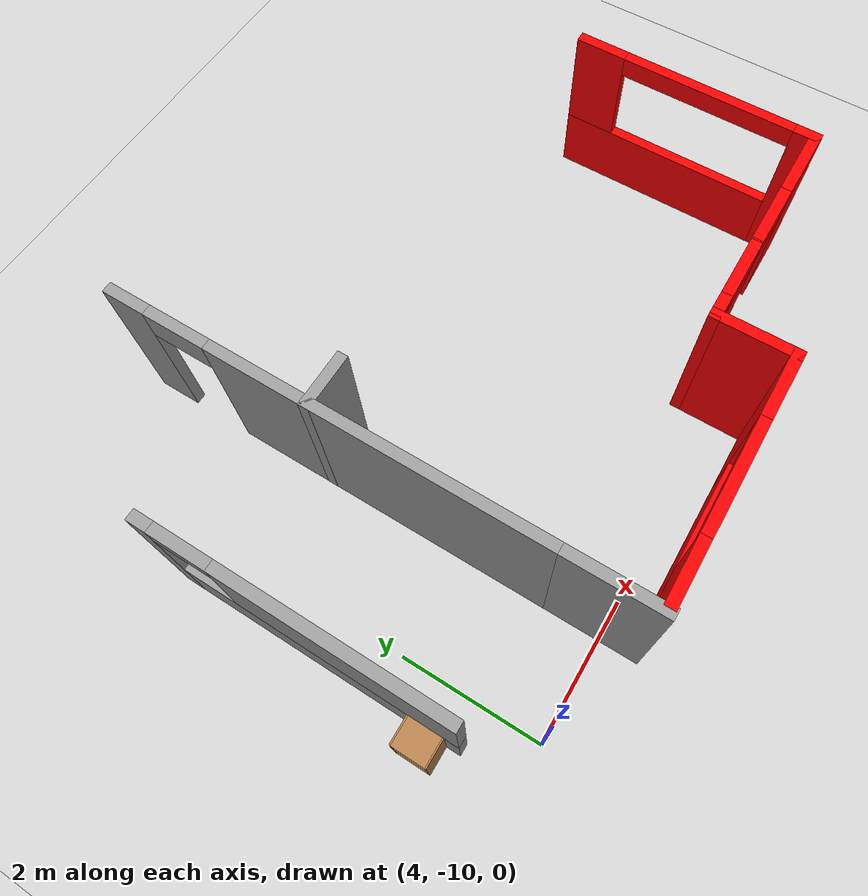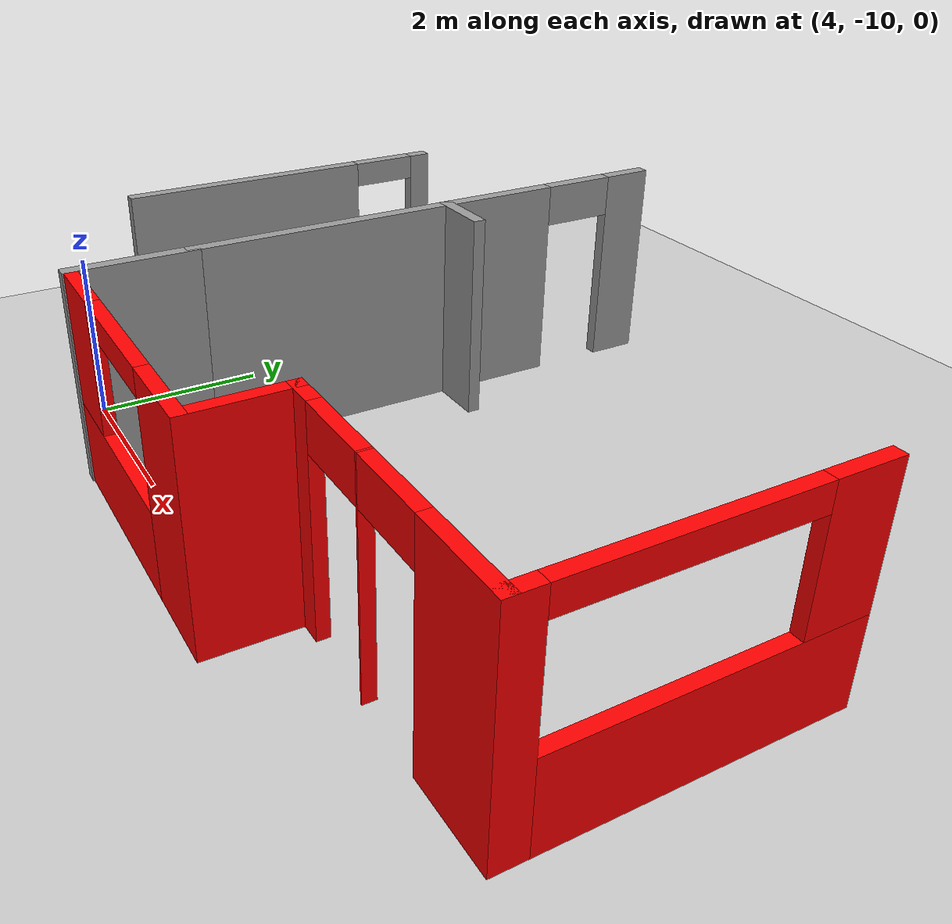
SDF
<sdf version="1.6">
 <world name="default">
  <model name="ground_plane">
   <static>1</static>
   <link name="link">
    <collision name="collision">
     <geometry><plane><normal>0 0 1</normal><size>100 100</size></plane></geometry>
     <surface><friction><ode><mu>100</mu><mu2>50</mu2></ode></friction></surface>
    </collision>
    <visual name="visual">
     <cast_shadows>0</cast_shadows>
     <geometry><plane><normal>0 0 1</normal><size>100 100</size></plane></geometry>
     <material>
      <script><uri>file://media/materials/scripts/gazebo.material</uri><name>Gazebo/Grey</name></script>
     </material>
    </visual>
   </link>
  </model>
  <model name="1floorHouse">
   <link name="Wall_302">
    <pose>-0.789795 -2.54 0 0 0 -1.5708</pose>
    <visual name="Wall_302_Visual_0">
     <pose>-1.93765 0 1.25 0 -0 0</pose>
     <geometry><box><size>0.274706 0.15 2.5</size></box></geometry>
     <material>
      <script><uri>file://media/materials/scripts/gazebo.material</uri><name>Gazebo/Grey</name></script>
      <ambient>1 1 1 1</ambient>
      <diffuse>0.7 0.7 0.7 1</diffuse>
      <specular>0.01 0.01 0.01 1</specular>
      <emissive>0 0 0 1</emissive>
     </material>
    </visual>
    <visual name="Wall_302_Visual_1">
     <pose>0.137353 0 0.5 0 -0 0</pose>
     <geometry><box><size>3.87529 0.15 1</size></box></geometry>
     <material>
      <script><uri>file://media/materials/scripts/gazebo.material</uri><name>Gazebo/Grey</name></script>
      <ambient>1 1 1 1</ambient>
      <diffuse>0.7 0.7 0.7 1</diffuse>
      <specular>0.01 0.01 0.01 1</specular>
      <emissive>0 0 0 1</emissive>
     </material>
    </visual>
    <visual name="Wall_302_Visual_2">
     <pose>0.537353 0 1.75 0 -0 0</pose>
     <geometry><box><size>3.07529 0.15 1.5</size></box></geometry>
     <material>
      <script><uri>file://media/materials/scripts/gazebo.material</uri><name>Gazebo/Grey</name></script>
      <ambient>1 1 1 1</ambient>
      <diffuse>0.7 0.7 0.7 1</diffuse>
      <specular>0.01 0.01 0.01 1</specular>
      <emissive>0 0 0 1</emissive>
     </material>
    </visual>
    <visual name="Wall_302_Visual_3">
     <pose>-1.40029 0 2.35 0 -0 0</pose>
     <geometry><box><size>0.8 0.15 0.3</size></box></geometry>
     <material>
      <script><uri>file://media/materials/scripts/gazebo.material</uri><name>Gazebo/Grey</name></script>
      <ambient>1 1 1 1</ambient>
      <diffuse>0.7 0.7 0.7 1</diffuse>
      <specular>0.01 0.01 0.01 1</specular>
      <emissive>0 0 0 1</emissive>
     </material>
    </visual>
    <collision name="Wall_302_Collision_0">
     <pose>-1.93765 0 1.25 0 -0 0</pose>
     <geometry><box><size>0.274706 0.15 2.5</size></box></geometry>
     <surface>
      <friction>
       <ode><mu>1</mu><mu2>1</mu2><fdir1>0 0 0</fdir1><slip1>0</slip1><slip2>0</slip2></ode>
       <torsional>
        <coefficient>1</coefficient>
        <patch_radius>0</patch_radius>
        <surface_radius>0</surface_radius>
        <use_patch_radius>1</use_patch_radius>
        <ode><slip>0</slip></ode>
       </torsional>
      </friction>
      <bounce><restitution_coefficient>0</restitution_coefficient><threshold>1e+06</threshold></bounce>
      <contact>
       <collide_without_contact>0</collide_without_contact>
       <collide_without_contact_bitmask>1</collide_without_contact_bitmask>
       <collide_bitmask>1</collide_bitmask>
       <ode>
        <soft_cfm>0</soft_cfm>
        <soft_erp>0.2</soft_erp>
        <kp>1e+13</kp>
        <kd>1</kd>
        <max_vel>0.01</max_vel>
        <min_depth>0</min_depth>
       </ode>
       <bullet>
        <split_impulse>1</split_impulse>
        <split_impulse_penetration_threshold>-0.01</split_impulse_penetration_threshold>
        <soft_cfm>0</soft_cfm>
        <soft_erp>0.2</soft_erp>
        <kp>1e+13</kp>
        <kd>1</kd>
       </bullet>
      </contact>
     </surface>
    </collision>
    <collision name="Wall_302_Collision_3">
     <pose>-1.40029 0 2.35 0 -0 0</pose>
     <geometry><box><size>0.8 0.15 0.3</size></box></geometry>
     <surface>
      <friction>
       <ode><mu>1</mu><mu2>1</mu2><fdir1>0 0 0</fdir1><slip1>0</slip1><slip2>0</slip2></ode>
       <torsional>
        <coefficient>1</coefficient>
        <patch_radius>0</patch_radius>
        <surface_radius>0</surface_radius>
        <use_patch_radius>1</use_patch_radius>
        <ode><slip>0</slip></ode>
       </torsional>
      </friction>
      <bounce><restitution_coefficient>0</restitution_coefficient><threshold>1e+06</threshold></bounce>
      <contact>
       <collide_without_contact>0</collide_without_contact>
       <collide_without_contact_bitmask>1</collide_without_contact_bitmask>
       <collide_bitmask>1</collide_bitmask>
       <ode>
        <soft_cfm>0</soft_cfm>
        <soft_erp>0.2</soft_erp>
        <kp>1e+13</kp>
        <kd>1</kd>
        <max_vel>0.01</max_vel>
        <min_depth>0</min_depth>
       </ode>
       <bullet>
        <split_impulse>1</split_impulse>
        <split_impulse_penetration_threshold>-0.01</split_impulse_penetration_threshold>
        <soft_cfm>0</soft_cfm>
        <soft_erp>0.2</soft_erp>
        <kp>1e+13</kp>
        <kd>1</kd>
       </bullet>
      </contact>
     </surface>
    </collision>
    <collision name="Wall_302_Collision_1">
     <pose>0.137353 0 0.5 0 -0 0</pose>
     <geometry><box><size>3.87529 0.15 1</size></box></geometry>
     <surface>
      <friction>
       <ode><mu>1</mu><mu2>1</mu2><fdir1>0 0 0</fdir1><slip1>0</slip1><slip2>0</slip2></ode>
       <torsional>
        <coefficient>1</coefficient>
        <patch_radius>0</patch_radius>
        <surface_radius>0</surface_radius>
        <use_patch_radius>1</use_patch_radius>
        <ode><slip>0</slip></ode>
       </torsional>
      </friction>
      <bounce><restitution_coefficient>0</restitution_coefficient><threshold>1e+06</threshold></bounce>
      <contact>
       <collide_without_contact>0</collide_without_contact>
       <collide_without_contact_bitmask>1</collide_without_contact_bitmask>
       <collide_bitmask>1</collide_bitmask>
       <ode>
        <soft_cfm>0</soft_cfm>
        <soft_erp>0.2</soft_erp>
        <kp>1e+13</kp>
        <kd>1</kd>
        <max_vel>0.01</max_vel>
        <min_depth>0</min_depth>
       </ode>
       <bullet>
        <split_impulse>1</split_impulse>
        <split_impulse_penetration_threshold>-0.01</split_impulse_penetration_threshold>
        <soft_cfm>0</soft_cfm>
        <soft_erp>0.2</soft_erp>
        <kp>1e+13</kp>
        <kd>1</kd>
       </bullet>
      </contact>
     </surface>
    </collision>
    <collision name="Wall_302_Collision_2">
     <pose>0.537353 0 1.75 0 -0 0</pose>
     <geometry><box><size>3.07529 0.15 1.5</size></box></geometry>
     <surface>
      <friction>
       <ode><mu>1</mu><mu2>1</mu2><fdir1>0 0 0</fdir1><slip1>0</slip1><slip2>0</slip2></ode>
       <torsional>
        <coefficient>1</coefficient>
        <patch_radius>0</patch_radius>
        <surface_radius>0</surface_radius>
        <use_patch_radius>1</use_patch_radius>
        <ode><slip>0</slip></ode>
       </torsional>
      </friction>
      <bounce><restitution_coefficient>0</restitution_coefficient><threshold>1e+06</threshold></bounce>
      <contact>
       <collide_without_contact>0</collide_without_contact>
       <collide_without_contact_bitmask>1</collide_without_contact_bitmask>
       <collide_bitmask>1</collide_bitmask>
       <ode>
        <soft_cfm>0</soft_cfm>
        <soft_erp>0.2</soft_erp>
        <kp>1e+13</kp>
        <kd>1</kd>
        <max_vel>0.01</max_vel>
        <min_depth>0</min_depth>
       </ode>
       <bullet>
        <split_impulse>1</split_impulse>
        <split_impulse_penetration_threshold>-0.01</split_impulse_penetration_threshold>
        <soft_cfm>0</soft_cfm>
        <soft_erp>0.2</soft_erp>
        <kp>1e+13</kp>
        <kd>1</kd>
       </bullet>
      </contact>
     </surface>
    </collision>
   </link>
   <link name="Wall_336">
    <pose>1.26021 -1.46995 0 0 0 -1.5708</pose>
    <visual name="Wall_336_Visual_0">
     <pose>-2.8165 0 1.25 0 -0 0</pose>
     <geometry><box><size>0.617113 0.15 2.5</size></box></geometry>
     <material>
      <script><uri>file://media/materials/scripts/gazebo.material</uri><name>Gazebo/Grey</name></script>
      <ambient>1 1 1 1</ambient>
      <diffuse>0.7 0.7 0.7 1</diffuse>
      <specular>0.01 0.01 0.01 1</specular>
      <emissive>0 0 0 1</emissive>
     </material>
    </visual>
    <visual name="Wall_336_Visual_1">
     <pose>0.758557 0 1.25 0 -0 0</pose>
     <geometry><box><size>4.733 0.15 2.5</size></box></geometry>
     <material>
      <script><uri>file://media/materials/scripts/gazebo.material</uri><name>Gazebo/Grey</name></script>
      <ambient>1 1 1 1</ambient>
      <diffuse>0.7 0.7 0.7 1</diffuse>
      <specular>0.01 0.01 0.01 1</specular>
      <emissive>0 0 0 1</emissive>
     </material>
    </visual>
    <visual name="Wall_336_Visual_2">
     <pose>-2.05794 0 2.25 0 -0 0</pose>
     <geometry><box><size>0.9 0.15 0.5</size></box></geometry>
     <material>
      <script><uri>file://media/materials/scripts/gazebo.material</uri><name>Gazebo/Grey</name></script>
      <ambient>1 1 1 1</ambient>
      <diffuse>0.7 0.7 0.7 1</diffuse>
      <specular>0.01 0.01 0.01 1</specular>
      <emissive>0 0 0 1</emissive>
     </material>
    </visual>
    <collision name="Wall_336_Collision_0">
     <pose>-2.8165 0 1.25 0 -0 0</pose>
     <geometry><box><size>0.617113 0.15 2.5</size></box></geometry>
     <surface>
      <friction>
       <ode><mu>1</mu><mu2>1</mu2><fdir1>0 0 0</fdir1><slip1>0</slip1><slip2>0</slip2></ode>
       <torsional>
        <coefficient>1</coefficient>
        <patch_radius>0</patch_radius>
        <surface_radius>0</surface_radius>
        <use_patch_radius>1</use_patch_radius>
        <ode><slip>0</slip></ode>
       </torsional>
      </friction>
      <bounce><restitution_coefficient>0</restitution_coefficient><threshold>1e+06</threshold></bounce>
      <contact>
       <collide_without_contact>0</collide_without_contact>
       <collide_without_contact_bitmask>1</collide_without_contact_bitmask>
       <collide_bitmask>1</collide_bitmask>
       <ode>
        <soft_cfm>0</soft_cfm>
        <soft_erp>0.2</soft_erp>
        <kp>1e+13</kp>
        <kd>1</kd>
        <max_vel>0.01</max_vel>
        <min_depth>0</min_depth>
       </ode>
       <bullet>
        <split_impulse>1</split_impulse>
        <split_impulse_penetration_threshold>-0.01</split_impulse_penetration_threshold>
        <soft_cfm>0</soft_cfm>
        <soft_erp>0.2</soft_erp>
        <kp>1e+13</kp>
        <kd>1</kd>
       </bullet>
      </contact>
     </surface>
    </collision>
    <collision name="Wall_336_Collision_1">
     <pose>0.758557 0 1.25 0 -0 0</pose>
     <geometry><box><size>4.733 0.15 2.5</size></box></geometry>
     <surface>
      <friction>
       <ode><mu>1</mu><mu2>1</mu2><fdir1>0 0 0</fdir1><slip1>0</slip1><slip2>0</slip2></ode>
       <torsional>
        <coefficient>1</coefficient>
        <patch_radius>0</patch_radius>
        <surface_radius>0</surface_radius>
        <use_patch_radius>1</use_patch_radius>
        <ode><slip>0</slip></ode>
       </torsional>
      </friction>
      <bounce><restitution_coefficient>0</restitution_coefficient><threshold>1e+06</threshold></bounce>
      <contact>
       <collide_without_contact>0</collide_without_contact>
       <collide_without_contact_bitmask>1</collide_without_contact_bitmask>
       <collide_bitmask>1</collide_bitmask>
       <ode>
        <soft_cfm>0</soft_cfm>
        <soft_erp>0.2</soft_erp>
        <kp>1e+13</kp>
        <kd>1</kd>
        <max_vel>0.01</max_vel>
        <min_depth>0</min_depth>
       </ode>
       <bullet>
        <split_impulse>1</split_impulse>
        <split_impulse_penetration_threshold>-0.01</split_impulse_penetration_threshold>
        <soft_cfm>0</soft_cfm>
        <soft_erp>0.2</soft_erp>
        <kp>1e+13</kp>
        <kd>1</kd>
       </bullet>
      </contact>
     </surface>
    </collision>
    <collision name="Wall_336_Collision_2">
     <pose>-2.05794 0 2.25 0 -0 0</pose>
     <geometry><box><size>0.9 0.15 0.5</size></box></geometry>
     <surface>
      <friction>
       <ode><mu>1</mu><mu2>1</mu2><fdir1>0 0 0</fdir1><slip1>0</slip1><slip2>0</slip2></ode>
       <torsional>
        <coefficient>1</coefficient>
        <patch_radius>0</patch_radius>
        <surface_radius>0</surface_radius>
        <use_patch_radius>1</use_patch_radius>
        <ode><slip>0</slip></ode>
       </torsional>
      </friction>
      <bounce><restitution_coefficient>0</restitution_coefficient><threshold>1e+06</threshold></bounce>
      <contact>
       <collide_without_contact>0</collide_without_contact>
       <collide_without_contact_bitmask>1</collide_without_contact_bitmask>
       <collide_bitmask>1</collide_bitmask>
       <ode>
        <soft_cfm>0</soft_cfm>
        <soft_erp>0.2</soft_erp>
        <kp>1e+13</kp>
        <kd>1</kd>
        <max_vel>0.01</max_vel>
        <min_depth>0</min_depth>
       </ode>
       <bullet>
        <split_impulse>1</split_impulse>
        <split_impulse_penetration_threshold>-0.01</split_impulse_penetration_threshold>
        <soft_cfm>0</soft_cfm>
        <soft_erp>0.2</soft_erp>
        <kp>1e+13</kp>
        <kd>1</kd>
       </bullet>
      </contact>
     </surface>
    </collision>
   </link>
   <link name="Wall_337">
    <pose>1.5832 -1.312 0 0 -0 0</pose>
    <visual name="Wall_337_Visual">
     <pose>0 0 1.25 0 -0 0</pose>
     <geometry><box><size>0.8 0.15 2.5</size></box></geometry>
     <material>
      <script><uri>file://media/materials/scripts/gazebo.material</uri><name>Gazebo/Grey</name></script>
      <ambient>1 1 1 1</ambient>
      <diffuse>0.7 0.7 0.7 1</diffuse>
      <specular>0.01 0.01 0.01 1</specular>
      <emissive>0 0 0 1</emissive>
     </material>
    </visual>
    <collision name="Wall_337_Collision">
     <pose>0 0 1.25 0 -0 0</pose>
     <geometry><box><size>0.8 0.15 2.5</size></box></geometry>
     <surface>
      <friction>
       <ode><mu>1</mu><mu2>1</mu2><fdir1>0 0 0</fdir1><slip1>0</slip1><slip2>0</slip2></ode>
       <torsional>
        <coefficient>1</coefficient>
        <patch_radius>0</patch_radius>
        <surface_radius>0</surface_radius>
        <use_patch_radius>1</use_patch_radius>
        <ode><slip>0</slip></ode>
       </torsional>
      </friction>
      <bounce><restitution_coefficient>0</restitution_coefficient><threshold>1e+06</threshold></bounce>
      <contact>
       <collide_without_contact>0</collide_without_contact>
       <collide_without_contact_bitmask>1</collide_without_contact_bitmask>
       <collide_bitmask>1</collide_bitmask>
       <ode>
        <soft_cfm>0</soft_cfm>
        <soft_erp>0.2</soft_erp>
        <kp>1e+13</kp>
        <kd>1</kd>
        <max_vel>0.01</max_vel>
        <min_depth>0</min_depth>
       </ode>
       <bullet>
        <split_impulse>1</split_impulse>
        <split_impulse_penetration_threshold>-0.01</split_impulse_penetration_threshold>
        <soft_cfm>0</soft_cfm>
        <soft_erp>0.2</soft_erp>
        <kp>1e+13</kp>
        <kd>1</kd>
       </bullet>
      </contact>
     </surface>
    </collision>
   </link>
   <link name="Wall_338">
    <pose>7.8602 -3.07643 0 0 -0 1.5708</pose>
    <visual name="Wall_338_Visual_0">
     <pose>-1.61551 0 1.25 0 -0 0</pose>
     <geometry><box><size>0.368981 0.15 2.5</size></box></geometry>
     <material>
      <script><uri>file://media/materials/scripts/gazebo.material</uri><name>Gazebo/Grey</name></script>
      <ambient>1 0 0 1</ambient>
      <diffuse>0.7 0.7 0.7 1</diffuse>
      <specular>0.01 0.01 0.01 1</specular>
      <emissive>0 0 0 1</emissive>
     </material>
    </visual>
    <visual name="Wall_338_Visual_1">
     <pose>0.18449 0 0.5 0 -0 0</pose>
     <geometry><box><size>3.23102 0.15 1</size></box></geometry>
     <material>
      <script><uri>file://media/materials/scripts/gazebo.material</uri><name>Gazebo/Grey</name></script>
      <ambient>1 0 0 1</ambient>
      <diffuse>0.7 0.7 0.7 1</diffuse>
      <specular>0.01 0.01 0.01 1</specular>
      <emissive>0 0 0 1</emissive>
     </material>
    </visual>
    <visual name="Wall_338_Visual_2">
     <pose>1.43449 0 1.75 0 -0 0</pose>
     <geometry><box><size>0.731019 0.15 1.5</size></box></geometry>
     <material>
      <script><uri>file://media/materials/scripts/gazebo.material</uri><name>Gazebo/Grey</name></script>
      <ambient>1 0 0 1</ambient>
      <diffuse>0.7 0.7 0.7 1</diffuse>
      <specular>0.01 0.01 0.01 1</specular>
      <emissive>0 0 0 1</emissive>
     </material>
    </visual>
    <visual name="Wall_338_Visual_3">
     <pose>-0.181019 0 2.35 0 -0 0</pose>
     <geometry><box><size>2.5 0.15 0.3</size></box></geometry>
     <material>
      <script><uri>file://media/materials/scripts/gazebo.material</uri><name>Gazebo/Grey</name></script>
      <ambient>1 0 0 1</ambient>
      <diffuse>0.7 0.7 0.7 1</diffuse>
      <specular>0.01 0.01 0.01 1</specular>
      <emissive>0 0 0 1</emissive>
     </material>
    </visual>
    <collision name="Wall_338_Collision_0">
     <pose>-1.61551 0 1.25 0 -0 0</pose>
     <geometry><box><size>0.368981 0.15 2.5</size></box></geometry>
     <surface>
      <friction>
       <ode><mu>1</mu><mu2>1</mu2><fdir1>0 0 0</fdir1><slip1>0</slip1><slip2>0</slip2></ode>
       <torsional>
        <coefficient>1</coefficient>
        <patch_radius>0</patch_radius>
        <surface_radius>0</surface_radius>
        <use_patch_radius>1</use_patch_radius>
        <ode><slip>0</slip></ode>
       </torsional>
      </friction>
      <bounce><restitution_coefficient>0</restitution_coefficient><threshold>1e+06</threshold></bounce>
      <contact>
       <collide_without_contact>0</collide_without_contact>
       <collide_without_contact_bitmask>1</collide_without_contact_bitmask>
       <collide_bitmask>1</collide_bitmask>
       <ode>
        <soft_cfm>0</soft_cfm>
        <soft_erp>0.2</soft_erp>
        <kp>1e+13</kp>
        <kd>1</kd>
        <max_vel>0.01</max_vel>
        <min_depth>0</min_depth>
       </ode>
       <bullet>
        <split_impulse>1</split_impulse>
        <split_impulse_penetration_threshold>-0.01</split_impulse_penetration_threshold>
        <soft_cfm>0</soft_cfm>
        <soft_erp>0.2</soft_erp>
        <kp>1e+13</kp>
        <kd>1</kd>
       </bullet>
      </contact>
     </surface>
    </collision>
    <collision name="Wall_338_Collision_1">
     <pose>0.18449 0 0.5 0 -0 0</pose>
     <geometry><box><size>3.23102 0.15 1</size></box></geometry>
     <surface>
      <friction>
       <ode><mu>1</mu><mu2>1</mu2><fdir1>0 0 0</fdir1><slip1>0</slip1><slip2>0</slip2></ode>
       <torsional>
        <coefficient>1</coefficient>
        <patch_radius>0</patch_radius>
        <surface_radius>0</surface_radius>
        <use_patch_radius>1</use_patch_radius>
        <ode><slip>0</slip></ode>
       </torsional>
      </friction>
      <bounce><restitution_coefficient>0</restitution_coefficient><threshold>1e+06</threshold></bounce>
      <contact>
       <collide_without_contact>0</collide_without_contact>
       <collide_without_contact_bitmask>1</collide_without_contact_bitmask>
       <collide_bitmask>1</collide_bitmask>
       <ode>
        <soft_cfm>0</soft_cfm>
        <soft_erp>0.2</soft_erp>
        <kp>1e+13</kp>
        <kd>1</kd>
        <max_vel>0.01</max_vel>
        <min_depth>0</min_depth>
       </ode>
       <bullet>
        <split_impulse>1</split_impulse>
        <split_impulse_penetration_threshold>-0.01</split_impulse_penetration_threshold>
        <soft_cfm>0</soft_cfm>
        <soft_erp>0.2</soft_erp>
        <kp>1e+13</kp>
        <kd>1</kd>
       </bullet>
      </contact>
     </surface>
    </collision>
    <collision name="Wall_338_Collision_2">
     <pose>1.43449 0 1.75 0 -0 0</pose>
     <geometry><box><size>0.731019 0.15 1.5</size></box></geometry>
     <surface>
      <friction>
       <ode><mu>1</mu><mu2>1</mu2><fdir1>0 0 0</fdir1><slip1>0</slip1><slip2>0</slip2></ode>
       <torsional>
        <coefficient>1</coefficient>
        <patch_radius>0</patch_radius>
        <surface_radius>0</surface_radius>
        <use_patch_radius>1</use_patch_radius>
        <ode><slip>0</slip></ode>
       </torsional>
      </friction>
      <bounce><restitution_coefficient>0</restitution_coefficient><threshold>1e+06</threshold></bounce>
      <contact>
       <collide_without_contact>0</collide_without_contact>
       <collide_without_contact_bitmask>1</collide_without_contact_bitmask>
       <collide_bitmask>1</collide_bitmask>
       <ode>
        <soft_cfm>0</soft_cfm>
        <soft_erp>0.2</soft_erp>
        <kp>1e+13</kp>
        <kd>1</kd>
        <max_vel>0.01</max_vel>
        <min_depth>0</min_depth>
       </ode>
       <bullet>
        <split_impulse>1</split_impulse>
        <split_impulse_penetration_threshold>-0.01</split_impulse_penetration_threshold>
        <soft_cfm>0</soft_cfm>
        <soft_erp>0.2</soft_erp>
        <kp>1e+13</kp>
        <kd>1</kd>
       </bullet>
      </contact>
     </surface>
    </collision>
    <collision name="Wall_338_Collision_3">
     <pose>-0.181019 0 2.35 0 -0 0</pose>
     <geometry><box><size>2.5 0.15 0.3</size></box></geometry>
     <surface>
      <friction>
       <ode><mu>1</mu><mu2>1</mu2><fdir1>0 0 0</fdir1><slip1>0</slip1><slip2>0</slip2></ode>
       <torsional>
        <coefficient>1</coefficient>
        <patch_radius>0</patch_radius>
        <surface_radius>0</surface_radius>
        <use_patch_radius>1</use_patch_radius>
        <ode><slip>0</slip></ode>
       </torsional>
      </friction>
      <bounce><restitution_coefficient>0</restitution_coefficient><threshold>1e+06</threshold></bounce>
      <contact>
       <collide_without_contact>0</collide_without_contact>
       <collide_without_contact_bitmask>1</collide_without_contact_bitmask>
       <collide_bitmask>1</collide_bitmask>
       <ode>
        <soft_cfm>0</soft_cfm>
        <soft_erp>0.2</soft_erp>
        <kp>1e+13</kp>
        <kd>1</kd>
        <max_vel>0.01</max_vel>
        <min_depth>0</min_depth>
       </ode>
       <bullet>
        <split_impulse>1</split_impulse>
        <split_impulse_penetration_threshold>-0.01</split_impulse_penetration_threshold>
        <soft_cfm>0</soft_cfm>
        <soft_erp>0.2</soft_erp>
        <kp>1e+13</kp>
        <kd>1</kd>
       </bullet>
      </contact>
     </surface>
    </collision>
   </link>
   <link name="Wall_339">
    <pose>6.2852 -4.80143 0 0 -0 3.14159</pose>
    <visual name="Wall_339_Visual_0">
     <pose>-1.11026 0 1.25 0 -0 0</pose>
     <geometry><box><size>1.07948 0.15 2.5</size></box></geometry>
     <material>
      <script><uri>file://media/materials/scripts/gazebo.material</uri><name>Gazebo/Grey</name></script>
      <ambient>1 0 0 1</ambient>
      <diffuse>0.7 0.7 0.7 1</diffuse>
      <specular>0.01 0.01 0.01 1</specular>
      <emissive>0 0 0 1</emissive>
     </material>
    </visual>
    <visual name="Wall_339_Visual_1">
     <pose>0.341197 0 1.25 0 -0 0</pose>
     <geometry><box><size>0.023442 0.15 2.5</size></box></geometry>
     <material>
      <script><uri>file://media/materials/scripts/gazebo.material</uri><name>Gazebo/Grey</name></script>
      <ambient>1 0 0 1</ambient>
      <diffuse>0.7 0.7 0.7 1</diffuse>
      <specular>0.01 0.01 0.01 1</specular>
      <emissive>0 0 0 1</emissive>
     </material>
    </visual>
    <visual name="Wall_339_Visual_3">
     <pose>-0.120524 0 2.25 0 -0 0</pose>
     <geometry><box><size>0.9 0.15 0.5</size></box></geometry>
     <material>
      <script><uri>file://media/materials/scripts/gazebo.material</uri><name>Gazebo/Grey</name></script>
      <ambient>1 0 0 1</ambient>
      <diffuse>0.7 0.7 0.7 1</diffuse>
      <specular>0.01 0.01 0.01 1</specular>
      <emissive>0 0 0 1</emissive>
     </material>
    </visual>
    <visual name="Wall_339_Visual_2">
     <pose>1.45146 0 1.25 0 -0 0</pose>
     <geometry><box><size>0.397083 0.15 2.5</size></box></geometry>
     <material>
      <script><uri>file://media/materials/scripts/gazebo.material</uri><name>Gazebo/Grey</name></script>
      <ambient>1 0 0 1</ambient>
      <diffuse>0.7 0.7 0.7 1</diffuse>
      <specular>0.01 0.01 0.01 1</specular>
      <emissive>0 0 0 1</emissive>
     </material>
    </visual>
    <visual name="Wall_339_Visual_4">
     <pose>0.802917 0 2.25 0 -0 0</pose>
     <geometry><box><size>0.9 0.15 0.5</size></box></geometry>
     <material>
      <script><uri>file://media/materials/scripts/gazebo.material</uri><name>Gazebo/Grey</name></script>
      <ambient>1 0 0 1</ambient>
      <diffuse>0.7 0.7 0.7 1</diffuse>
      <specular>0.01 0.01 0.01 1</specular>
      <emissive>0 0 0 1</emissive>
     </material>
    </visual>
    <collision name="Wall_339_Collision_0">
     <pose>-1.11026 0 1.25 0 -0 0</pose>
     <geometry><box><size>1.07948 0.15 2.5</size></box></geometry>
     <surface>
      <friction>
       <ode><mu>1</mu><mu2>1</mu2><fdir1>0 0 0</fdir1><slip1>0</slip1><slip2>0</slip2></ode>
       <torsional>
        <coefficient>1</coefficient>
        <patch_radius>0</patch_radius>
        <surface_radius>0</surface_radius>
        <use_patch_radius>1</use_patch_radius>
        <ode><slip>0</slip></ode>
       </torsional>
      </friction>
      <bounce><restitution_coefficient>0</restitution_coefficient><threshold>1e+06</threshold></bounce>
      <contact>
       <collide_without_contact>0</collide_without_contact>
       <collide_without_contact_bitmask>1</collide_without_contact_bitmask>
       <collide_bitmask>1</collide_bitmask>
       <ode>
        <soft_cfm>0</soft_cfm>
        <soft_erp>0.2</soft_erp>
        <kp>1e+13</kp>
        <kd>1</kd>
        <max_vel>0.01</max_vel>
        <min_depth>0</min_depth>
       </ode>
       <bullet>
        <split_impulse>1</split_impulse>
        <split_impulse_penetration_threshold>-0.01</split_impulse_penetration_threshold>
        <soft_cfm>0</soft_cfm>
        <soft_erp>0.2</soft_erp>
        <kp>1e+13</kp>
        <kd>1</kd>
       </bullet>
      </contact>
     </surface>
    </collision>
    <collision name="Wall_339_Collision_4">
     <pose>0.802917 0 2.25 0 -0 0</pose>
     <geometry><box><size>0.9 0.15 0.5</size></box></geometry>
     <surface>
      <friction>
       <ode><mu>1</mu><mu2>1</mu2><fdir1>0 0 0</fdir1><slip1>0</slip1><slip2>0</slip2></ode>
       <torsional>
        <coefficient>1</coefficient>
        <patch_radius>0</patch_radius>
        <surface_radius>0</surface_radius>
        <use_patch_radius>1</use_patch_radius>
        <ode><slip>0</slip></ode>
       </torsional>
      </friction>
      <bounce><restitution_coefficient>0</restitution_coefficient><threshold>1e+06</threshold></bounce>
      <contact>
       <collide_without_contact>0</collide_without_contact>
       <collide_without_contact_bitmask>1</collide_without_contact_bitmask>
       <collide_bitmask>1</collide_bitmask>
       <ode>
        <soft_cfm>0</soft_cfm>
        <soft_erp>0.2</soft_erp>
        <kp>1e+13</kp>
        <kd>1</kd>
        <max_vel>0.01</max_vel>
        <min_depth>0</min_depth>
       </ode>
       <bullet>
        <split_impulse>1</split_impulse>
        <split_impulse_penetration_threshold>-0.01</split_impulse_penetration_threshold>
        <soft_cfm>0</soft_cfm>
        <soft_erp>0.2</soft_erp>
        <kp>1e+13</kp>
        <kd>1</kd>
       </bullet>
      </contact>
     </surface>
    </collision>
    <collision name="Wall_339_Collision_1">
     <pose>0.341197 0 1.25 0 -0 0</pose>
     <geometry><box><size>0.023442 0.15 2.5</size></box></geometry>
     <surface>
      <friction>
       <ode><mu>1</mu><mu2>1</mu2><fdir1>0 0 0</fdir1><slip1>0</slip1><slip2>0</slip2></ode>
       <torsional>
        <coefficient>1</coefficient>
        <patch_radius>0</patch_radius>
        <surface_radius>0</surface_radius>
        <use_patch_radius>1</use_patch_radius>
        <ode><slip>0</slip></ode>
       </torsional>
      </friction>
      <bounce><restitution_coefficient>0</restitution_coefficient><threshold>1e+06</threshold></bounce>
      <contact>
       <collide_without_contact>0</collide_without_contact>
       <collide_without_contact_bitmask>1</collide_without_contact_bitmask>
       <collide_bitmask>1</collide_bitmask>
       <ode>
        <soft_cfm>0</soft_cfm>
        <soft_erp>0.2</soft_erp>
        <kp>1e+13</kp>
        <kd>1</kd>
        <max_vel>0.01</max_vel>
        <min_depth>0</min_depth>
       </ode>
       <bullet>
        <split_impulse>1</split_impulse>
        <split_impulse_penetration_threshold>-0.01</split_impulse_penetration_threshold>
        <soft_cfm>0</soft_cfm>
        <soft_erp>0.2</soft_erp>
        <kp>1e+13</kp>
        <kd>1</kd>
       </bullet>
      </contact>
     </surface>
    </collision>
    <collision name="Wall_339_Collision_2">
     <pose>1.45146 0 1.25 0 -0 0</pose>
     <geometry><box><size>0.397083 0.15 2.5</size></box></geometry>
     <surface>
      <friction>
       <ode><mu>1</mu><mu2>1</mu2><fdir1>0 0 0</fdir1><slip1>0</slip1><slip2>0</slip2></ode>
       <torsional>
        <coefficient>1</coefficient>
        <patch_radius>0</patch_radius>
        <surface_radius>0</surface_radius>
        <use_patch_radius>1</use_patch_radius>
        <ode><slip>0</slip></ode>
       </torsional>
      </friction>
      <bounce><restitution_coefficient>0</restitution_coefficient><threshold>1e+06</threshold></bounce>
      <contact>
       <collide_without_contact>0</collide_without_contact>
       <collide_without_contact_bitmask>1</collide_without_contact_bitmask>
       <collide_bitmask>1</collide_bitmask>
       <ode>
        <soft_cfm>0</soft_cfm>
        <soft_erp>0.2</soft_erp>
        <kp>1e+13</kp>
        <kd>1</kd>
        <max_vel>0.01</max_vel>
        <min_depth>0</min_depth>
       </ode>
       <bullet>
        <split_impulse>1</split_impulse>
        <split_impulse_penetration_threshold>-0.01</split_impulse_penetration_threshold>
        <soft_cfm>0</soft_cfm>
        <soft_erp>0.2</soft_erp>
        <kp>1e+13</kp>
        <kd>1</kd>
       </bullet>
      </contact>
     </surface>
    </collision>
    <collision name="Wall_339_Collision_3">
     <pose>-0.120524 0 2.25 0 -0 0</pose>
     <geometry><box><size>0.9 0.15 0.5</size></box></geometry>
     <surface>
      <friction>
       <ode><mu>1</mu><mu2>1</mu2><fdir1>0 0 0</fdir1><slip1>0</slip1><slip2>0</slip2></ode>
       <torsional>
        <coefficient>1</coefficient>
        <patch_radius>0</patch_radius>
        <surface_radius>0</surface_radius>
        <use_patch_radius>1</use_patch_radius>
        <ode><slip>0</slip></ode>
       </torsional>
      </friction>
      <bounce><restitution_coefficient>0</restitution_coefficient><threshold>1e+06</threshold></bounce>
      <contact>
       <collide_without_contact>0</collide_without_contact>
       <collide_without_contact_bitmask>1</collide_without_contact_bitmask>
       <collide_bitmask>1</collide_bitmask>
       <ode>
        <soft_cfm>0</soft_cfm>
        <soft_erp>0.2</soft_erp>
        <kp>1e+13</kp>
        <kd>1</kd>
        <max_vel>0.01</max_vel>
        <min_depth>0</min_depth>
       </ode>
       <bullet>
        <split_impulse>1</split_impulse>
        <split_impulse_penetration_threshold>-0.01</split_impulse_penetration_threshold>
        <soft_cfm>0</soft_cfm>
        <soft_erp>0.2</soft_erp>
        <kp>1e+13</kp>
        <kd>1</kd>
       </bullet>
      </contact>
     </surface>
    </collision>
   </link>
   <link name="Wall_340">
    <pose>4.7102 -5.32643 0 0 0 -1.5708</pose>
    <visual name="Wall_340_Visual">
     <pose>0 0 1.25 0 -0 0</pose>
     <geometry><box><size>1.2 0.15 2.5</size></box></geometry>
     <material>
      <script><uri>file://media/materials/scripts/gazebo.material</uri><name>Gazebo/Grey</name></script>
      <ambient>1 0 0 1</ambient>
      <diffuse>0.7 0.7 0.7 1</diffuse>
      <specular>0.01 0.01 0.01 1</specular>
      <emissive>0 0 0 1</emissive>
     </material>
    </visual>
    <collision name="Wall_340_Collision">
     <pose>0 0 1.25 0 -0 0</pose>
     <geometry><box><size>1.2 0.15 2.5</size></box></geometry>
     <surface>
      <friction>
       <ode><mu>1</mu><mu2>1</mu2><fdir1>0 0 0</fdir1><slip1>0</slip1><slip2>0</slip2></ode>
       <torsional>
        <coefficient>1</coefficient>
        <patch_radius>0</patch_radius>
        <surface_radius>0</surface_radius>
        <use_patch_radius>1</use_patch_radius>
        <ode><slip>0</slip></ode>
       </torsional>
      </friction>
      <bounce><restitution_coefficient>0</restitution_coefficient><threshold>1e+06</threshold></bounce>
      <contact>
       <collide_without_contact>0</collide_without_contact>
       <collide_without_contact_bitmask>1</collide_without_contact_bitmask>
       <collide_bitmask>1</collide_bitmask>
       <ode>
        <soft_cfm>0</soft_cfm>
        <soft_erp>0.2</soft_erp>
        <kp>1e+13</kp>
        <kd>1</kd>
        <max_vel>0.01</max_vel>
        <min_depth>0</min_depth>
       </ode>
       <bullet>
        <split_impulse>1</split_impulse>
        <split_impulse_penetration_threshold>-0.01</split_impulse_penetration_threshold>
        <soft_cfm>0</soft_cfm>
        <soft_erp>0.2</soft_erp>
        <kp>1e+13</kp>
        <kd>1</kd>
       </bullet>
      </contact>
     </surface>
    </collision>
   </link>
   <link name="Wall_341">
    <pose>3.0352 -5.85143 0 0 -0 3.14159</pose>
    <visual name="Wall_341_Visual_1">
     <pose>0.505727 0 0.5 0 -0 0</pose>
     <geometry><box><size>2.48855 0.15 1</size></box></geometry>
     <material>
      <script><uri>file://media/materials/scripts/gazebo.material</uri><name>Gazebo/Grey</name></script>
      <ambient>1 0 0 1</ambient>
      <diffuse>0.7 0.7 0.7 1</diffuse>
      <specular>0.01 0.01 0.01 1</specular>
      <emissive>0 0 0 1</emissive>
     </material>
    </visual>
    <visual name="Wall_341_Visual_0">
     <pose>-1.24427 0 1.25 0 -0 0</pose>
     <geometry><box><size>1.01145 0.15 2.5</size></box></geometry>
     <material>
      <script><uri>file://media/materials/scripts/gazebo.material</uri><name>Gazebo/Grey</name></script>
      <ambient>1 0 0 1</ambient>
      <diffuse>0.7 0.7 0.7 1</diffuse>
      <specular>0.01 0.01 0.01 1</specular>
      <emissive>0 0 0 1</emissive>
     </material>
    </visual>
    <visual name="Wall_341_Visual_2">
     <pose>1.30573 0 1.75 0 -0 0</pose>
     <geometry><box><size>0.888547 0.15 1.5</size></box></geometry>
     <material>
      <script><uri>file://media/materials/scripts/gazebo.material</uri><name>Gazebo/Grey</name></script>
      <ambient>1 0 0 1</ambient>
      <diffuse>0.7 0.7 0.7 1</diffuse>
      <specular>0.01 0.01 0.01 1</specular>
      <emissive>0 0 0 1</emissive>
     </material>
    </visual>
    <visual name="Wall_341_Visual_3">
     <pose>0.061453 0 2.35 0 -0 0</pose>
     <geometry><box><size>1.6 0.15 0.3</size></box></geometry>
     <material>
      <script><uri>file://media/materials/scripts/gazebo.material</uri><name>Gazebo/Grey</name></script>
      <ambient>1 0 0 1</ambient>
      <diffuse>0.7 0.7 0.7 1</diffuse>
      <specular>0.01 0.01 0.01 1</specular>
      <emissive>0 0 0 1</emissive>
     </material>
    </visual>
    <collision name="Wall_341_Collision_0">
     <pose>-1.24427 0 1.25 0 -0 0</pose>
     <geometry><box><size>1.01145 0.15 2.5</size></box></geometry>
     <surface>
      <friction>
       <ode><mu>1</mu><mu2>1</mu2><fdir1>0 0 0</fdir1><slip1>0</slip1><slip2>0</slip2></ode>
       <torsional>
        <coefficient>1</coefficient>
        <patch_radius>0</patch_radius>
        <surface_radius>0</surface_radius>
        <use_patch_radius>1</use_patch_radius>
        <ode><slip>0</slip></ode>
       </torsional>
      </friction>
      <bounce><restitution_coefficient>0</restitution_coefficient><threshold>1e+06</threshold></bounce>
      <contact>
       <collide_without_contact>0</collide_without_contact>
       <collide_without_contact_bitmask>1</collide_without_contact_bitmask>
       <collide_bitmask>1</collide_bitmask>
       <ode>
        <soft_cfm>0</soft_cfm>
        <soft_erp>0.2</soft_erp>
        <kp>1e+13</kp>
        <kd>1</kd>
        <max_vel>0.01</max_vel>
        <min_depth>0</min_depth>
       </ode>
       <bullet>
        <split_impulse>1</split_impulse>
        <split_impulse_penetration_threshold>-0.01</split_impulse_penetration_threshold>
        <soft_cfm>0</soft_cfm>
        <soft_erp>0.2</soft_erp>
        <kp>1e+13</kp>
        <kd>1</kd>
       </bullet>
      </contact>
     </surface>
    </collision>
    <collision name="Wall_341_Collision_1">
     <pose>0.505727 0 0.5 0 -0 0</pose>
     <geometry><box><size>2.48855 0.15 1</size></box></geometry>
     <surface>
      <friction>
       <ode><mu>1</mu><mu2>1</mu2><fdir1>0 0 0</fdir1><slip1>0</slip1><slip2>0</slip2></ode>
       <torsional>
        <coefficient>1</coefficient>
        <patch_radius>0</patch_radius>
        <surface_radius>0</surface_radius>
        <use_patch_radius>1</use_patch_radius>
        <ode><slip>0</slip></ode>
       </torsional>
      </friction>
      <bounce><restitution_coefficient>0</restitution_coefficient><threshold>1e+06</threshold></bounce>
      <contact>
       <collide_without_contact>0</collide_without_contact>
       <collide_without_contact_bitmask>1</collide_without_contact_bitmask>
       <collide_bitmask>1</collide_bitmask>
       <ode>
        <soft_cfm>0</soft_cfm>
        <soft_erp>0.2</soft_erp>
        <kp>1e+13</kp>
        <kd>1</kd>
        <max_vel>0.01</max_vel>
        <min_depth>0</min_depth>
       </ode>
       <bullet>
        <split_impulse>1</split_impulse>
        <split_impulse_penetration_threshold>-0.01</split_impulse_penetration_threshold>
        <soft_cfm>0</soft_cfm>
        <soft_erp>0.2</soft_erp>
        <kp>1e+13</kp>
        <kd>1</kd>
       </bullet>
      </contact>
     </surface>
    </collision>
    <collision name="Wall_341_Collision_2">
     <pose>1.30573 0 1.75 0 -0 0</pose>
     <geometry><box><size>0.888547 0.15 1.5</size></box></geometry>
     <surface>
      <friction>
       <ode><mu>1</mu><mu2>1</mu2><fdir1>0 0 0</fdir1><slip1>0</slip1><slip2>0</slip2></ode>
       <torsional>
        <coefficient>1</coefficient>
        <patch_radius>0</patch_radius>
        <surface_radius>0</surface_radius>
        <use_patch_radius>1</use_patch_radius>
        <ode><slip>0</slip></ode>
       </torsional>
      </friction>
      <bounce><restitution_coefficient>0</restitution_coefficient><threshold>1e+06</threshold></bounce>
      <contact>
       <collide_without_contact>0</collide_without_contact>
       <collide_without_contact_bitmask>1</collide_without_contact_bitmask>
       <collide_bitmask>1</collide_bitmask>
       <ode>
        <soft_cfm>0</soft_cfm>
        <soft_erp>0.2</soft_erp>
        <kp>1e+13</kp>
        <kd>1</kd>
        <max_vel>0.01</max_vel>
        <min_depth>0</min_depth>
       </ode>
       <bullet>
        <split_impulse>1</split_impulse>
        <split_impulse_penetration_threshold>-0.01</split_impulse_penetration_threshold>
        <soft_cfm>0</soft_cfm>
        <soft_erp>0.2</soft_erp>
        <kp>1e+13</kp>
        <kd>1</kd>
       </bullet>
      </contact>
     </surface>
    </collision>
    <collision name="Wall_341_Collision_3">
     <pose>0.061453 0 2.35 0 -0 0</pose>
     <geometry><box><size>1.6 0.15 0.3</size></box></geometry>
     <surface>
      <friction>
       <ode><mu>1</mu><mu2>1</mu2><fdir1>0 0 0</fdir1><slip1>0</slip1><slip2>0</slip2></ode>
       <torsional>
        <coefficient>1</coefficient>
        <patch_radius>0</patch_radius>
        <surface_radius>0</surface_radius>
        <use_patch_radius>1</use_patch_radius>
        <ode><slip>0</slip></ode>
       </torsional>
      </friction>
      <bounce><restitution_coefficient>0</restitution_coefficient><threshold>1e+06</threshold></bounce>
      <contact>
       <collide_without_contact>0</collide_without_contact>
       <collide_without_contact_bitmask>1</collide_without_contact_bitmask>
       <collide_bitmask>1</collide_bitmask>
       <ode>
        <soft_cfm>0</soft_cfm>
        <soft_erp>0.2</soft_erp>
        <kp>1e+13</kp>
        <kd>1</kd>
        <max_vel>0.01</max_vel>
        <min_depth>0</min_depth>
       </ode>
       <bullet>
        <split_impulse>1</split_impulse>
        <split_impulse_penetration_threshold>-0.01</split_impulse_penetration_threshold>
        <soft_cfm>0</soft_cfm>
        <soft_erp>0.2</soft_erp>
        <kp>1e+13</kp>
        <kd>1</kd>
       </bullet>
      </contact>
     </surface>
    </collision>
   </link>
   <link name="Wall_342">
    <pose>1.26021 -5.195 0 0 0 -1.5708</pose>
    <visual name="Wall_342_Visual">
     <pose>0 0 1.25 0 -0 0</pose>
     <geometry><box><size>1.5 0.15 2.5</size></box></geometry>
     <material>
      <script><uri>file://media/materials/scripts/gazebo.material</uri><name>Gazebo/Grey</name></script>
      <ambient>1 1 1 1</ambient>
      <diffuse>0.7 0.7 0.7 1</diffuse>
      <specular>0.01 0.01 0.01 1</specular>
      <emissive>0 0 0 1</emissive>
     </material>
    </visual>
    <collision name="Wall_342_Collision">
     <pose>0 0 1.25 0 -0 0</pose>
     <geometry><box><size>1.5 0.15 2.5</size></box></geometry>
     <surface>
      <friction>
       <ode><mu>1</mu><mu2>1</mu2><fdir1>0 0 0</fdir1><slip1>0</slip1><slip2>0</slip2></ode>
       <torsional>
        <coefficient>1</coefficient>
        <patch_radius>0</patch_radius>
        <surface_radius>0</surface_radius>
        <use_patch_radius>1</use_patch_radius>
        <ode><slip>0</slip></ode>
       </torsional>
      </friction>
      <bounce><restitution_coefficient>0</restitution_coefficient><threshold>1e+06</threshold></bounce>
      <contact>
       <collide_without_contact>0</collide_without_contact>
       <collide_without_contact_bitmask>1</collide_without_contact_bitmask>
       <collide_bitmask>1</collide_bitmask>
       <ode>
        <soft_cfm>0</soft_cfm>
        <soft_erp>0.2</soft_erp>
        <kp>1e+13</kp>
        <kd>1</kd>
        <max_vel>0.01</max_vel>
        <min_depth>0</min_depth>
       </ode>
       <bullet>
        <split_impulse>1</split_impulse>
        <split_impulse_penetration_threshold>-0.01</split_impulse_penetration_threshold>
        <soft_cfm>0</soft_cfm>
        <soft_erp>0.2</soft_erp>
        <kp>1e+13</kp>
        <kd>1</kd>
       </bullet>
      </contact>
     </surface>
    </collision>
   </link>
   <static>1</static>
   <pose>4.2533 -4.6154 0 0 -0 0</pose>
  </model>
  <model name="cabinet">
   <static>1</static>
   <link name="cabinet_bottom_plate">
    <inertial>
     <pose>0 0 -1 0 -0 0</pose>
     <inertia><ixx>2.05</ixx><ixy>0</ixy><ixz>0</ixz><iyy>2.05</iyy><iyz>0</iyz><izz>2.05</izz></inertia>
     <mass>25</mass>
    </inertial>
    <collision name="cabinet_bottom_plate_geom">
     <pose>0 0 0.01 0 -0 0</pose>
     <geometry><box><size>0.45 0.45 0.02</size></box></geometry>
    </collision>
    <visual name="cabinet_bottom_plate_geom_visual">
     <pose>0 0 0.01 0 -0 0</pose>
     <geometry><box><size>0.45 0.45 0.02</size></box></geometry>
     <material>
      <script><uri>file://media/materials/scripts/gazebo.material</uri><name>Gazebo/Wood</name></script>
     </material>
    </visual>
    <collision name="cabinet_bottom_plate_geom_cabinet_back_plate">
     <pose>0.235 0 0.51 0 -0 0</pose>
     <geometry><box><size>0.02 0.45 1.02</size></box></geometry>
    </collision>
    <visual name="cabinet_bottom_plate_geom_cabinet_back_plate_visual">
     <pose>0.235 0 0.51 0 -0 0</pose>
     <geometry><box><size>0.02 0.45 1.02</size></box></geometry>
     <material>
      <script><uri>file://media/materials/scripts/gazebo.material</uri><name>Gazebo/Wood</name></script>
     </material>
    </visual>
    <collision name="cabinet_bottom_plate_geom_cabinet_left_plate">
     <pose>0 0.235 0.51 0 -0 0</pose>
     <geometry><box><size>0.45 0.02 1.02</size></box></geometry>
    </collision>
    <visual name="cabinet_bottom_plate_geom_cabinet_left_plate_visual">
     <pose>0 0.235 0.51 0 -0 0</pose>
     <geometry><box><size>0.45 0.02 1.02</size></box></geometry>
     <material>
      <script><uri>file://media/materials/scripts/gazebo.material</uri><name>Gazebo/Wood</name></script>
     </material>
    </visual>
    <collision name="cabinet_bottom_plate_geom_cabinet_middle_plate">
     <pose>0 0 0.51 0 -0 0</pose>
     <geometry><box><size>0.45 0.45 0.02</size></box></geometry>
    </collision>
    <visual name="cabinet_bottom_plate_geom_cabinet_middle_plate_visual">
     <pose>0 0 0.51 0 -0 0</pose>
     <geometry><box><size>0.45 0.45 0.02</size></box></geometry>
     <material>
      <script><uri>file://media/materials/scripts/gazebo.material</uri><name>Gazebo/Wood</name></script>
     </material>
    </visual>
    <collision name="cabinet_bottom_plate_geom_cabinet_right_plate">
     <pose>0 -0.235 0.51 0 -0 0</pose>
     <geometry><box><size>0.45 0.02 1.02</size></box></geometry>
    </collision>
    <visual name="cabinet_bottom_plate_geom_cabinet_right_plate_visual">
     <pose>0 -0.235 0.51 0 -0 0</pose>
     <geometry><box><size>0.45 0.02 1.02</size></box></geometry>
     <material>
      <script><uri>file://media/materials/scripts/gazebo.material</uri><name>Gazebo/Wood</name></script>
     </material>
    </visual>
    <collision name="cabinet_bottom_plate_geom_cabinet_top_plate">
     <pose>0 0 1.01 0 -0 0</pose>
     <geometry><box><size>0.45 0.45 0.02</size></box></geometry>
    </collision>
    <visual name="cabinet_bottom_plate_geom_cabinet_top_plate_visual">
     <pose>0 0 1.01 0 -0 0</pose>
     <geometry><box><size>0.45 0.45 0.02</size></box></geometry>
     <material>
      <script><uri>file://media/materials/scripts/gazebo.material</uri><name>Gazebo/Wood</name></script>
     </material>
    </visual>
   </link>
   <pose>3.24338 -8.78854 0 0 -0 0</pose>
  </model>
 </world>
</sdf>
